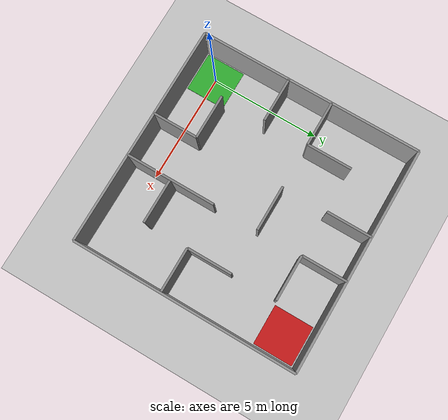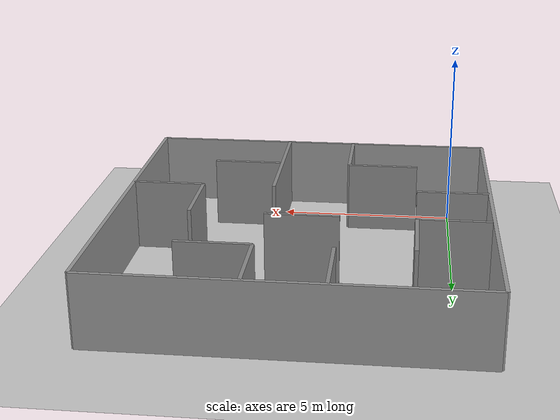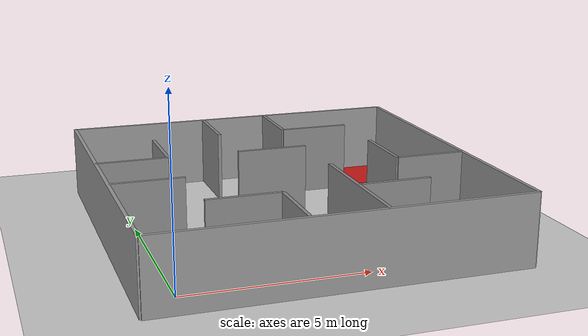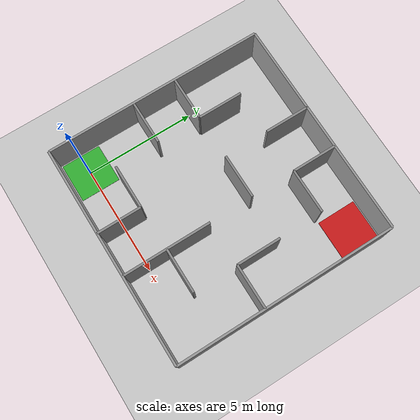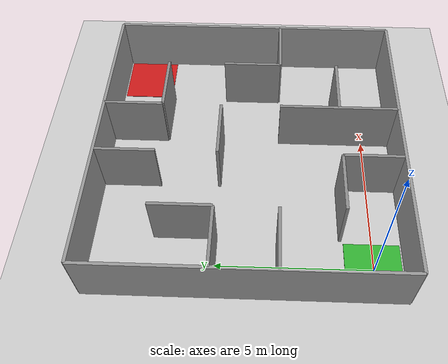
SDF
<?xml version="1.0" ?>
<sdf version='1.10'>
  <world name='default'>
    <gravity>0 0 -9.8</gravity>
    <atmosphere type='adiabatic'/>
    <physics name='default_physics' default='false' type='ode'>
      <max_step_size>0.001</max_step_size>
      <real_time_factor>1</real_time_factor>
      <real_time_update_rate>1000</real_time_update_rate>
    </physics>

    <plugin filename="gz-sim-physics-system"           name="gz::sim::systems::Physics"/>
    <plugin filename="gz-sim-user-commands-system"     name="gz::sim::systems::UserCommands"/>
    <plugin filename="gz-sim-scene-broadcaster-system" name="gz::sim::systems::SceneBroadcaster"/>
    <plugin filename="gz-sim-sensors-system"           name="gz::sim::systems::Sensors">
      <render_engine>ogre2</render_engine>
    </plugin>

    <scene>
      <ambient>0.4 0.4 0.4 1</ambient>
      <background>0.7 0.7 0.7 1</background>
      <shadows>true</shadows>
    </scene>

    <light name='sun' type='directional'>
      <pose>0 0 10 0 0 0</pose>
      <cast_shadows>true</cast_shadows>
      <intensity>1</intensity>
      <diffuse>0.8 0.8 0.8 1</diffuse>
      <specular>0.2 0.2 0.2 1</specular>
      <direction>-0.5 0.1 -0.9</direction>
    </light>

    <model name='ground_plane'>
      <static>true</static>
      <link name='link'>
        <collision name='collision'>
          <geometry><plane><normal>0 0 1</normal><size>100 100</size></plane></geometry>
        </collision>
        <visual name='visual'>
          <geometry><plane><normal>0 0 1</normal><size>100 100</size></plane></geometry>
          <material>
            <ambient>0.8 0.8 0.8 1</ambient>
            <diffuse>0.8 0.8 0.8 1</diffuse>
          </material>
        </visual>
      </link>
    </model>

    <model name='maze'>
      <static>true</static>

      <!-- ============ OUTER BOUNDARY (10x10) ============ -->
      <link name='wall_north'>
        <pose>4 9 1 0 0 0</pose>
        <collision name='c'><geometry><box><size>10 0.1 2</size></box></geometry></collision>
        <visual name='v'><geometry><box><size>10 0.1 2</size></box></geometry>
          <material><ambient>0.6 0.6 0.6 1</ambient><diffuse>0.6 0.6 0.6 1</diffuse></material>
        </visual>
      </link>
      <link name='wall_south'>
        <pose>4 -1 1 0 0 0</pose>
        <collision name='c'><geometry><box><size>10 0.1 2</size></box></geometry></collision>
        <visual name='v'><geometry><box><size>10 0.1 2</size></box></geometry>
          <material><ambient>0.6 0.6 0.6 1</ambient><diffuse>0.6 0.6 0.6 1</diffuse></material>
        </visual>
      </link>
      <link name='wall_east'>
        <pose>9 4 1 0 0 0</pose>
        <collision name='c'><geometry><box><size>0.1 10 2</size></box></geometry></collision>
        <visual name='v'><geometry><box><size>0.1 10 2</size></box></geometry>
          <material><ambient>0.6 0.6 0.6 1</ambient><diffuse>0.6 0.6 0.6 1</diffuse></material>
        </visual>
      </link>
      <link name='wall_west'>
        <pose>-1 4 1 0 0 0</pose>
        <collision name='c'><geometry><box><size>0.1 10 2</size></box></geometry></collision>
        <visual name='v'><geometry><box><size>0.1 10 2</size></box></geometry>
          <material><ambient>0.6 0.6 0.6 1</ambient><diffuse>0.6 0.6 0.6 1</diffuse></material>
        </visual>
      </link>

      <!-- ============ HORIZONTAL INTERIOR WALLS ============ -->
      <link name='h_a'><pose>2 1 1 0 0 0</pose>
        <collision name='c'><geometry><box><size>2 0.1 2</size></box></geometry></collision>
        <visual name='v'><geometry><box><size>2 0.1 2</size></box></geometry>
          <material><ambient>0.55 0.55 0.55 1</ambient><diffuse>0.55 0.55 0.55 1</diffuse></material></visual></link>

      <link name='h_b'><pose>6 1 1 0 0 0</pose>
        <collision name='c'><geometry><box><size>2 0.1 2</size></box></geometry></collision>
        <visual name='v'><geometry><box><size>2 0.1 2</size></box></geometry>
          <material><ambient>0.55 0.55 0.55 1</ambient><diffuse>0.55 0.55 0.55 1</diffuse></material></visual></link>

      <link name='h_c'><pose>8 3 1 0 0 0</pose>
        <collision name='c'><geometry><box><size>2 0.1 2</size></box></geometry></collision>
        <visual name='v'><geometry><box><size>2 0.1 2</size></box></geometry>
          <material><ambient>0.55 0.55 0.55 1</ambient><diffuse>0.55 0.55 0.55 1</diffuse></material></visual></link>

      <link name='h_d1'><pose>0 3 1 0 0 0</pose>
        <collision name='c'><geometry><box><size>2 0.1 2</size></box></geometry></collision>
        <visual name='v'><geometry><box><size>2 0.1 2</size></box></geometry>
          <material><ambient>0.55 0.55 0.55 1</ambient><diffuse>0.55 0.55 0.55 1</diffuse></material></visual></link>

      <link name='h_d2'><pose>0 5 1 0 0 0</pose>
        <collision name='c'><geometry><box><size>2 0.1 2</size></box></geometry></collision>
        <visual name='v'><geometry><box><size>2 0.1 2</size></box></geometry>
          <material><ambient>0.55 0.55 0.55 1</ambient><diffuse>0.55 0.55 0.55 1</diffuse></material></visual></link>

      <link name='h_e'><pose>4 5 1 0 0 0</pose>
        <collision name='c'><geometry><box><size>2 0.1 2</size></box></geometry></collision>
        <visual name='v'><geometry><box><size>2 0.1 2</size></box></geometry>
          <material><ambient>0.55 0.55 0.55 1</ambient><diffuse>0.55 0.55 0.55 1</diffuse></material></visual></link>

      <link name='h_f'><pose>6 7 1 0 0 0</pose>
        <collision name='c'><geometry><box><size>2 0.1 2</size></box></geometry></collision>
        <visual name='v'><geometry><box><size>2 0.1 2</size></box></geometry>
          <material><ambient>0.55 0.55 0.55 1</ambient><diffuse>0.55 0.55 0.55 1</diffuse></material></visual></link>

      <!-- ============ VERTICAL INTERIOR WALLS ============ -->
      <link name='v_a'><pose>3 0 1 0 0 0</pose>
        <collision name='c'><geometry><box><size>0.1 2 2</size></box></geometry></collision>
        <visual name='v'><geometry><box><size>0.1 2 2</size></box></geometry>
          <material><ambient>0.55 0.55 0.55 1</ambient><diffuse>0.55 0.55 0.55 1</diffuse></material></visual></link>

      <link name='v_b'><pose>5 1 1 0 0 0</pose>
        <collision name='c'><geometry><box><size>0.1 4 2</size></box></geometry></collision>
        <visual name='v'><geometry><box><size>0.1 4 2</size></box></geometry>
          <material><ambient>0.55 0.55 0.55 1</ambient><diffuse>0.55 0.55 0.55 1</diffuse></material></visual></link>

      <link name='v_c'><pose>7 4 1 0 0 0</pose>
        <collision name='c'><geometry><box><size>0.1 2 2</size></box></geometry></collision>
        <visual name='v'><geometry><box><size>0.1 2 2</size></box></geometry>
          <material><ambient>0.55 0.55 0.55 1</ambient><diffuse>0.55 0.55 0.55 1</diffuse></material></visual></link>

      <link name='v_d'><pose>1 6 1 0 0 0</pose>
        <collision name='c'><geometry><box><size>0.1 2 2</size></box></geometry></collision>
        <visual name='v'><geometry><box><size>0.1 2 2</size></box></geometry>
          <material><ambient>0.55 0.55 0.55 1</ambient><diffuse>0.55 0.55 0.55 1</diffuse></material></visual></link>

      <link name='v_e'><pose>3 8 1 0 0 0</pose>
        <collision name='c'><geometry><box><size>0.1 2 2</size></box></geometry></collision>
        <visual name='v'><geometry><box><size>0.1 2 2</size></box></geometry>
          <material><ambient>0.55 0.55 0.55 1</ambient><diffuse>0.55 0.55 0.55 1</diffuse></material></visual></link>

      <link name='v_f'><pose>5 8 1 0 0 0</pose>
        <collision name='c'><geometry><box><size>0.1 2 2</size></box></geometry></collision>
        <visual name='v'><geometry><box><size>0.1 2 2</size></box></geometry>
          <material><ambient>0.55 0.55 0.55 1</ambient><diffuse>0.55 0.55 0.55 1</diffuse></material></visual></link>

      <!-- ============ START / GOAL MARKERS ============ -->
      <link name='start_marker'>
        <pose>0 0 0.01 0 0 0</pose>
        <visual name='v'>
          <geometry><box><size>1.8 1.8 0.02</size></box></geometry>
          <material><ambient>0.2 0.7 0.2 1</ambient><diffuse>0.2 0.7 0.2 1</diffuse></material>
        </visual>
      </link>
      <link name='goal_marker'>
        <pose>8 8 0.01 0 0 0</pose>
        <visual name='v'>
          <geometry><box><size>1.8 1.8 0.02</size></box></geometry>
          <material><ambient>0.8 0.1 0.1 1</ambient><diffuse>0.8 0.1 0.1 1</diffuse></material>
        </visual>
      </link>
    </model>

  </world>
</sdf>
